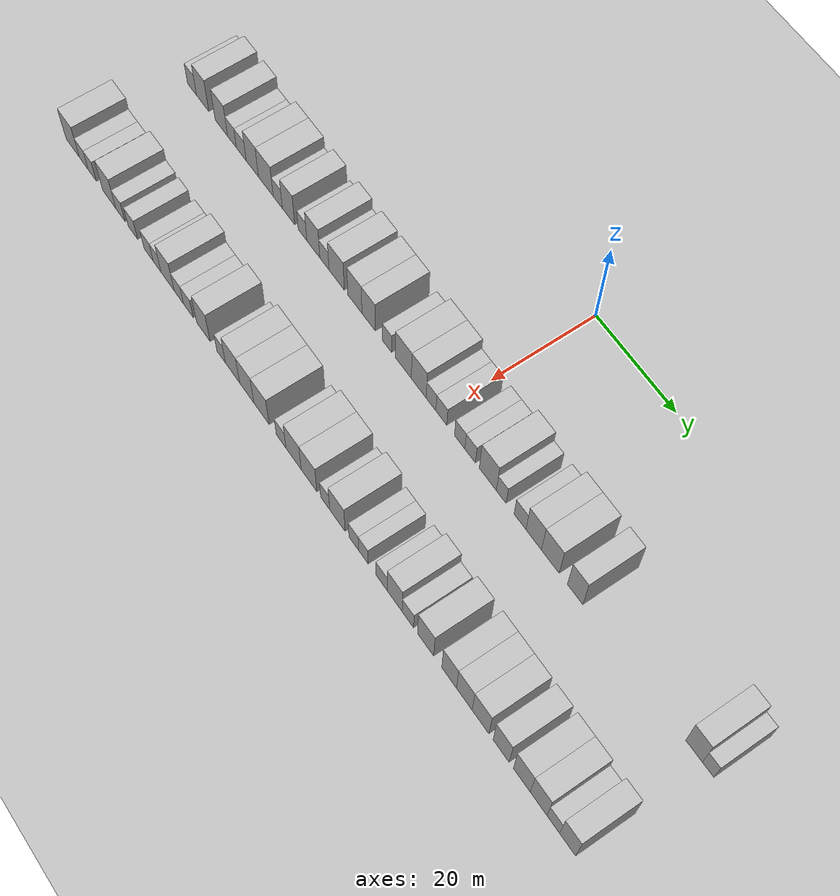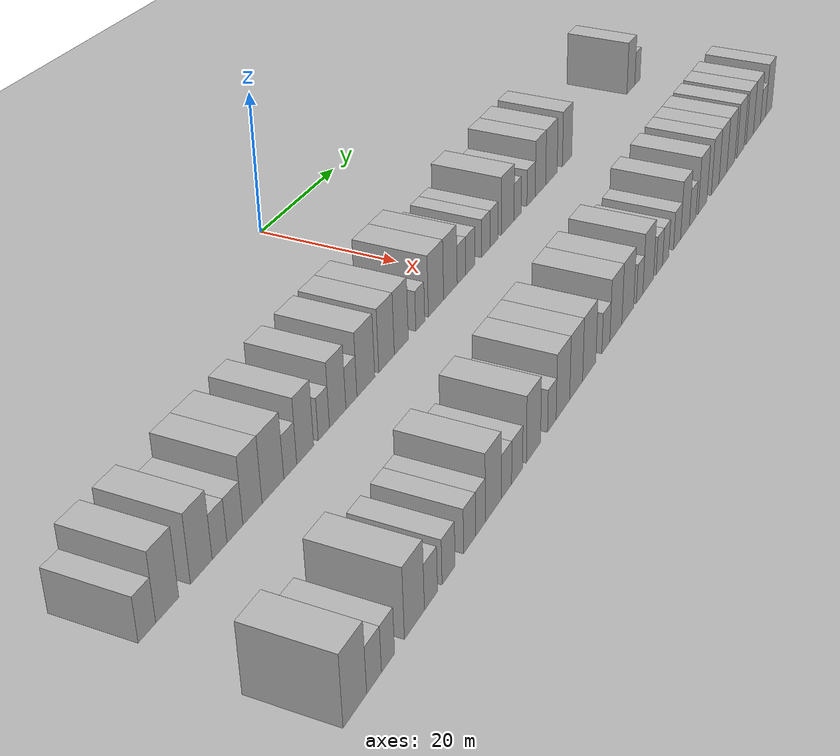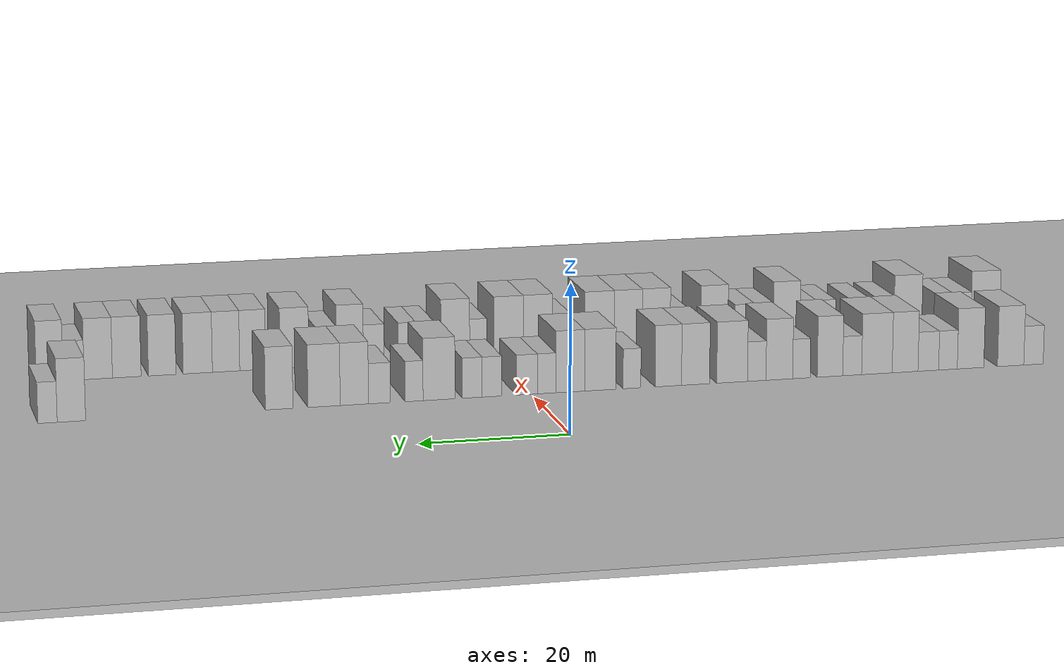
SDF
<sdf version="1.6">
 <world name="default">
  <include><name>ground_plane_1</name><uri>model://HANNAS_ground_plane</uri></include>
  <include>
   <name>ground_plane_2</name>
   <uri>model://HANNAS_ground_plane</uri>
   <pose>100 0 0  0 0 0</pose>
  </include>
  <model name="building_34">
   <static>1</static>
   <pose>25.0000 -70.9645 0 0.000000 0.000000 0.000000</pose>
   <link name="link">
    <pose>0 0 3.00 0 0 0</pose>
    <collision name="collision"><geometry><box><size>10.0000 2.8503 6.0000</size></box></geometry></collision>
    <visual name="visual">
     <cast_shadows>0</cast_shadows>
     <geometry><box><size>10.0000 2.8503 6.0000</size></box></geometry>
     <material>
      <script>
       <uri>model://HANNAS_wall/materials/scripts</uri>
       <uri>model://HANNAS_wall/materials/textures</uri>
       <name>vrc/HANNAS_wall</name>
      </script>
     </material>
    </visual>
   </link>
  </model>
  <model name="building_35">
   <static>1</static>
   <pose>25.0000 -67.6166 0 0.000000 0.000000 0.000000</pose>
   <link name="link">
    <pose>0 0 4.50 0 0 0</pose>
    <collision name="collision"><geometry><box><size>10.0000 3.8455 9.0000</size></box></geometry></collision>
    <visual name="visual">
     <cast_shadows>0</cast_shadows>
     <geometry><box><size>10.0000 3.8455 9.0000</size></box></geometry>
     <material>
      <script>
       <uri>model://HANNAS_wall/materials/scripts</uri>
       <uri>model://HANNAS_wall/materials/textures</uri>
       <name>vrc/HANNAS_wall</name>
      </script>
     </material>
    </visual>
   </link>
  </model>
  <model name="building_36">
   <static>1</static>
   <pose>25.0000 -61.7630 0 0.000000 0.000000 0.000000</pose>
   <link name="link">
    <pose>0 0 4.50 0 0 0</pose>
    <collision name="collision"><geometry><box><size>10.0000 3.8618 9.0000</size></box></geometry></collision>
    <visual name="visual">
     <cast_shadows>0</cast_shadows>
     <geometry><box><size>10.0000 3.8618 9.0000</size></box></geometry>
     <material>
      <script>
       <uri>model://HANNAS_wall/materials/scripts</uri>
       <uri>model://HANNAS_wall/materials/textures</uri>
       <name>vrc/HANNAS_wall</name>
      </script>
     </material>
    </visual>
   </link>
  </model>
  <model name="building_37">
   <static>1</static>
   <pose>25.0000 -58.4791 0 0.000000 0.000000 0.000000</pose>
   <link name="link">
    <pose>0 0 3.00 0 0 0</pose>
    <collision name="collision"><geometry><box><size>10.0000 2.7060 6.0000</size></box></geometry></collision>
    <visual name="visual">
     <cast_shadows>0</cast_shadows>
     <geometry><box><size>10.0000 2.7060 6.0000</size></box></geometry>
     <material>
      <script>
       <uri>model://HANNAS_wall/materials/scripts</uri>
       <uri>model://HANNAS_wall/materials/textures</uri>
       <name>vrc/HANNAS_wall</name>
      </script>
     </material>
    </visual>
   </link>
  </model>
  <model name="building_38">
   <static>1</static>
   <pose>25.0000 -55.6310 0 0.000000 0.000000 0.000000</pose>
   <link name="link">
    <pose>0 0 3.00 0 0 0</pose>
    <collision name="collision"><geometry><box><size>10.0000 2.9903 6.0000</size></box></geometry></collision>
    <visual name="visual">
     <cast_shadows>0</cast_shadows>
     <geometry><box><size>10.0000 2.9903 6.0000</size></box></geometry>
     <material>
      <script>
       <uri>model://HANNAS_wall/materials/scripts</uri>
       <uri>model://HANNAS_wall/materials/textures</uri>
       <name>vrc/HANNAS_wall</name>
      </script>
     </material>
    </visual>
   </link>
  </model>
  <model name="building_39">
   <static>1</static>
   <pose>25.0000 -52.2686 0 0.000000 0.000000 0.000000</pose>
   <link name="link">
    <pose>0 0 4.50 0 0 0</pose>
    <collision name="collision"><geometry><box><size>10.0000 3.7345 9.0000</size></box></geometry></collision>
    <visual name="visual">
     <cast_shadows>0</cast_shadows>
     <geometry><box><size>10.0000 3.7345 9.0000</size></box></geometry>
     <material>
      <script>
       <uri>model://HANNAS_wall/materials/scripts</uri>
       <uri>model://HANNAS_wall/materials/textures</uri>
       <name>vrc/HANNAS_wall</name>
      </script>
     </material>
    </visual>
   </link>
  </model>
  <model name="building_40">
   <static>1</static>
   <pose>25.0000 -48.2032 0 0.000000 0.000000 0.000000</pose>
   <link name="link">
    <pose>0 0 4.50 0 0 0</pose>
    <collision name="collision"><geometry><box><size>10.0000 4.3964 9.0000</size></box></geometry></collision>
    <visual name="visual">
     <cast_shadows>0</cast_shadows>
     <geometry><box><size>10.0000 4.3964 9.0000</size></box></geometry>
     <material>
      <script>
       <uri>model://HANNAS_wall/materials/scripts</uri>
       <uri>model://HANNAS_wall/materials/textures</uri>
       <name>vrc/HANNAS_wall</name>
      </script>
     </material>
    </visual>
   </link>
  </model>
  <model name="building_41">
   <static>1</static>
   <pose>25.0000 -44.6476 0 0.000000 0.000000 0.000000</pose>
   <link name="link">
    <pose>0 0 3.00 0 0 0</pose>
    <collision name="collision"><geometry><box><size>10.0000 2.7148 6.0000</size></box></geometry></collision>
    <visual name="visual">
     <cast_shadows>0</cast_shadows>
     <geometry><box><size>10.0000 2.7148 6.0000</size></box></geometry>
     <material>
      <script>
       <uri>model://HANNAS_wall/materials/scripts</uri>
       <uri>model://HANNAS_wall/materials/textures</uri>
       <name>vrc/HANNAS_wall</name>
      </script>
     </material>
    </visual>
   </link>
  </model>
  <model name="building_42">
   <static>1</static>
   <pose>25.0000 -41.4667 0 0.000000 0.000000 0.000000</pose>
   <link name="link">
    <pose>0 0 4.50 0 0 0</pose>
    <collision name="collision"><geometry><box><size>10.0000 3.6469 9.0000</size></box></geometry></collision>
    <visual name="visual">
     <cast_shadows>0</cast_shadows>
     <geometry><box><size>10.0000 3.6469 9.0000</size></box></geometry>
     <material>
      <script>
       <uri>model://HANNAS_wall/materials/scripts</uri>
       <uri>model://HANNAS_wall/materials/textures</uri>
       <name>vrc/HANNAS_wall</name>
      </script>
     </material>
    </visual>
   </link>
  </model>
  <model name="building_43">
   <static>1</static>
   <pose>25.0000 -37.3886 0 0.000000 0.000000 0.000000</pose>
   <link name="link">
    <pose>0 0 3.00 0 0 0</pose>
    <collision name="collision"><geometry><box><size>10.0000 2.5093 6.0000</size></box></geometry></collision>
    <visual name="visual">
     <cast_shadows>0</cast_shadows>
     <geometry><box><size>10.0000 2.5093 6.0000</size></box></geometry>
     <material>
      <script>
       <uri>model://HANNAS_wall/materials/scripts</uri>
       <uri>model://HANNAS_wall/materials/textures</uri>
       <name>vrc/HANNAS_wall</name>
      </script>
     </material>
    </visual>
   </link>
  </model>
  <model name="building_44">
   <static>1</static>
   <pose>25.0000 -34.2427 0 0.000000 0.000000 0.000000</pose>
   <link name="link">
    <pose>0 0 4.50 0 0 0</pose>
    <collision name="collision"><geometry><box><size>10.0000 3.7825 9.0000</size></box></geometry></collision>
    <visual name="visual">
     <cast_shadows>0</cast_shadows>
     <geometry><box><size>10.0000 3.7825 9.0000</size></box></geometry>
     <material>
      <script>
       <uri>model://HANNAS_wall/materials/scripts</uri>
       <uri>model://HANNAS_wall/materials/textures</uri>
       <name>vrc/HANNAS_wall</name>
      </script>
     </material>
    </visual>
   </link>
  </model>
  <model name="building_45">
   <static>1</static>
   <pose>25.0000 -31.0395 0 0.000000 0.000000 0.000000</pose>
   <link name="link">
    <pose>0 0 3.00 0 0 0</pose>
    <collision name="collision"><geometry><box><size>10.0000 2.6238 6.0000</size></box></geometry></collision>
    <visual name="visual">
     <cast_shadows>0</cast_shadows>
     <geometry><box><size>10.0000 2.6238 6.0000</size></box></geometry>
     <material>
      <script>
       <uri>model://HANNAS_wall/materials/scripts</uri>
       <uri>model://HANNAS_wall/materials/textures</uri>
       <name>vrc/HANNAS_wall</name>
      </script>
     </material>
    </visual>
   </link>
  </model>
  <model name="building_46">
   <static>1</static>
   <pose>25.0000 -27.5578 0 0.000000 0.000000 0.000000</pose>
   <link name="link">
    <pose>0 0 4.50 0 0 0</pose>
    <collision name="collision"><geometry><box><size>10.0000 4.3396 9.0000</size></box></geometry></collision>
    <visual name="visual">
     <cast_shadows>0</cast_shadows>
     <geometry><box><size>10.0000 4.3396 9.0000</size></box></geometry>
     <material>
      <script>
       <uri>model://HANNAS_wall/materials/scripts</uri>
       <uri>model://HANNAS_wall/materials/textures</uri>
       <name>vrc/HANNAS_wall</name>
      </script>
     </material>
    </visual>
   </link>
  </model>
  <model name="building_47">
   <static>1</static>
   <pose>25.0000 -22.4125 0 0.000000 0.000000 0.000000</pose>
   <link name="link">
    <pose>0 0 4.50 0 0 0</pose>
    <collision name="collision"><geometry><box><size>10.0000 3.9510 9.0000</size></box></geometry></collision>
    <visual name="visual">
     <cast_shadows>0</cast_shadows>
     <geometry><box><size>10.0000 3.9510 9.0000</size></box></geometry>
     <material>
      <script>
       <uri>model://HANNAS_wall/materials/scripts</uri>
       <uri>model://HANNAS_wall/materials/textures</uri>
       <name>vrc/HANNAS_wall</name>
      </script>
     </material>
    </visual>
   </link>
  </model>
  <model name="building_48">
   <static>1</static>
   <pose>25.0000 -18.5852 0 0.000000 0.000000 0.000000</pose>
   <link name="link">
    <pose>0 0 4.50 0 0 0</pose>
    <collision name="collision"><geometry><box><size>10.0000 3.7035 9.0000</size></box></geometry></collision>
    <visual name="visual">
     <cast_shadows>0</cast_shadows>
     <geometry><box><size>10.0000 3.7035 9.0000</size></box></geometry>
     <material>
      <script>
       <uri>model://HANNAS_wall/materials/scripts</uri>
       <uri>model://HANNAS_wall/materials/textures</uri>
       <name>vrc/HANNAS_wall</name>
      </script>
     </material>
    </visual>
   </link>
  </model>
  <model name="building_49">
   <static>1</static>
   <pose>25.0000 -13.5009 0 0.000000 0.000000 0.000000</pose>
   <link name="link">
    <pose>0 0 3.00 0 0 0</pose>
    <collision name="collision"><geometry><box><size>10.0000 2.4650 6.0000</size></box></geometry></collision>
    <visual name="visual">
     <cast_shadows>0</cast_shadows>
     <geometry><box><size>10.0000 2.4650 6.0000</size></box></geometry>
     <material>
      <script>
       <uri>model://HANNAS_wall/materials/scripts</uri>
       <uri>model://HANNAS_wall/materials/textures</uri>
       <name>vrc/HANNAS_wall</name>
      </script>
     </material>
    </visual>
   </link>
  </model>
  <model name="building_50">
   <static>1</static>
   <pose>25.0000 -9.0955 0 0.000000 0.000000 0.000000</pose>
   <link name="link">
    <pose>0 0 4.50 0 0 0</pose>
    <collision name="collision"><geometry><box><size>10.0000 4.3460 9.0000</size></box></geometry></collision>
    <visual name="visual">
     <cast_shadows>0</cast_shadows>
     <geometry><box><size>10.0000 4.3460 9.0000</size></box></geometry>
     <material>
      <script>
       <uri>model://HANNAS_wall/materials/scripts</uri>
       <uri>model://HANNAS_wall/materials/textures</uri>
       <name>vrc/HANNAS_wall</name>
      </script>
     </material>
    </visual>
   </link>
  </model>
  <model name="building_51">
   <static>1</static>
   <pose>25.0000 -4.9324 0 0.000000 0.000000 0.000000</pose>
   <link name="link">
    <pose>0 0 4.50 0 0 0</pose>
    <collision name="collision"><geometry><box><size>10.0000 3.9801 9.0000</size></box></geometry></collision>
    <visual name="visual">
     <cast_shadows>0</cast_shadows>
     <geometry><box><size>10.0000 3.9801 9.0000</size></box></geometry>
     <material>
      <script>
       <uri>model://HANNAS_wall/materials/scripts</uri>
       <uri>model://HANNAS_wall/materials/textures</uri>
       <name>vrc/HANNAS_wall</name>
      </script>
     </material>
    </visual>
   </link>
  </model>
  <model name="building_52">
   <static>1</static>
   <pose>25.0000 -1.6606 0 0.000000 0.000000 0.000000</pose>
   <link name="link">
    <pose>0 0 3.00 0 0 0</pose>
    <collision name="collision"><geometry><box><size>10.0000 2.5635 6.0000</size></box></geometry></collision>
    <visual name="visual">
     <cast_shadows>0</cast_shadows>
     <geometry><box><size>10.0000 2.5635 6.0000</size></box></geometry>
     <material>
      <script>
       <uri>model://HANNAS_wall/materials/scripts</uri>
       <uri>model://HANNAS_wall/materials/textures</uri>
       <name>vrc/HANNAS_wall</name>
      </script>
     </material>
    </visual>
   </link>
  </model>
  <model name="building_53">
   <static>1</static>
   <pose>25.0000 1.0606 0 0.000000 0.000000 0.000000</pose>
   <link name="link">
    <pose>0 0 3.00 0 0 0</pose>
    <collision name="collision"><geometry><box><size>10.0000 2.8790 6.0000</size></box></geometry></collision>
    <visual name="visual">
     <cast_shadows>0</cast_shadows>
     <geometry><box><size>10.0000 2.8790 6.0000</size></box></geometry>
     <material>
      <script>
       <uri>model://HANNAS_wall/materials/scripts</uri>
       <uri>model://HANNAS_wall/materials/textures</uri>
       <name>vrc/HANNAS_wall</name>
      </script>
     </material>
    </visual>
   </link>
  </model>
  <model name="building_54">
   <static>1</static>
   <pose>25.0000 5.8469 0 0.000000 0.000000 0.000000</pose>
   <link name="link">
    <pose>0 0 3.00 0 0 0</pose>
    <collision name="collision"><geometry><box><size>10.0000 2.6937 6.0000</size></box></geometry></collision>
    <visual name="visual">
     <cast_shadows>0</cast_shadows>
     <geometry><box><size>10.0000 2.6937 6.0000</size></box></geometry>
     <material>
      <script>
       <uri>model://HANNAS_wall/materials/scripts</uri>
       <uri>model://HANNAS_wall/materials/textures</uri>
       <name>vrc/HANNAS_wall</name>
      </script>
     </material>
    </visual>
   </link>
  </model>
  <model name="building_55">
   <static>1</static>
   <pose>25.0000 8.5517 0 0.000000 0.000000 0.000000</pose>
   <link name="link">
    <pose>0 0 3.00 0 0 0</pose>
    <collision name="collision"><geometry><box><size>10.0000 2.7158 6.0000</size></box></geometry></collision>
    <visual name="visual">
     <cast_shadows>0</cast_shadows>
     <geometry><box><size>10.0000 2.7158 6.0000</size></box></geometry>
     <material>
      <script>
       <uri>model://HANNAS_wall/materials/scripts</uri>
       <uri>model://HANNAS_wall/materials/textures</uri>
       <name>vrc/HANNAS_wall</name>
      </script>
     </material>
    </visual>
   </link>
  </model>
  <model name="building_56">
   <static>1</static>
   <pose>25.0000 13.0838 0 0.000000 0.000000 0.000000</pose>
   <link name="link">
    <pose>0 0 4.50 0 0 0</pose>
    <collision name="collision"><geometry><box><size>10.0000 4.3484 9.0000</size></box></geometry></collision>
    <visual name="visual">
     <cast_shadows>0</cast_shadows>
     <geometry><box><size>10.0000 4.3484 9.0000</size></box></geometry>
     <material>
      <script>
       <uri>model://HANNAS_wall/materials/scripts</uri>
       <uri>model://HANNAS_wall/materials/textures</uri>
       <name>vrc/HANNAS_wall</name>
      </script>
     </material>
    </visual>
   </link>
  </model>
  <model name="building_57">
   <static>1</static>
   <pose>25.0000 16.4776 0 0.000000 0.000000 0.000000</pose>
   <link name="link">
    <pose>0 0 3.00 0 0 0</pose>
    <collision name="collision"><geometry><box><size>10.0000 2.4392 6.0000</size></box></geometry></collision>
    <visual name="visual">
     <cast_shadows>0</cast_shadows>
     <geometry><box><size>10.0000 2.4392 6.0000</size></box></geometry>
     <material>
      <script>
       <uri>model://HANNAS_wall/materials/scripts</uri>
       <uri>model://HANNAS_wall/materials/textures</uri>
       <name>vrc/HANNAS_wall</name>
      </script>
     </material>
    </visual>
   </link>
  </model>
  <model name="building_58">
   <static>1</static>
   <pose>25.0000 21.1760 0 0.000000 0.000000 0.000000</pose>
   <link name="link">
    <pose>0 0 3.00 0 0 0</pose>
    <collision name="collision"><geometry><box><size>10.0000 2.9576 6.0000</size></box></geometry></collision>
    <visual name="visual">
     <cast_shadows>0</cast_shadows>
     <geometry><box><size>10.0000 2.9576 6.0000</size></box></geometry>
     <material>
      <script>
       <uri>model://HANNAS_wall/materials/scripts</uri>
       <uri>model://HANNAS_wall/materials/textures</uri>
       <name>vrc/HANNAS_wall</name>
      </script>
     </material>
    </visual>
   </link>
  </model>
  <model name="building_59">
   <static>1</static>
   <pose>25.0000 24.5634 0 0.000000 0.000000 0.000000</pose>
   <link name="link">
    <pose>0 0 4.50 0 0 0</pose>
    <collision name="collision"><geometry><box><size>10.0000 3.8172 9.0000</size></box></geometry></collision>
    <visual name="visual">
     <cast_shadows>0</cast_shadows>
     <geometry><box><size>10.0000 3.8172 9.0000</size></box></geometry>
     <material>
      <script>
       <uri>model://HANNAS_wall/materials/scripts</uri>
       <uri>model://HANNAS_wall/materials/textures</uri>
       <name>vrc/HANNAS_wall</name>
      </script>
     </material>
    </visual>
   </link>
  </model>
  <model name="building_60">
   <static>1</static>
   <pose>25.0000 28.6364 0 0.000000 0.000000 0.000000</pose>
   <link name="link">
    <pose>0 0 4.50 0 0 0</pose>
    <collision name="collision"><geometry><box><size>10.0000 4.3287 9.0000</size></box></geometry></collision>
    <visual name="visual">
     <cast_shadows>0</cast_shadows>
     <geometry><box><size>10.0000 4.3287 9.0000</size></box></geometry>
     <material>
      <script>
       <uri>model://HANNAS_wall/materials/scripts</uri>
       <uri>model://HANNAS_wall/materials/textures</uri>
       <name>vrc/HANNAS_wall</name>
      </script>
     </material>
    </visual>
   </link>
  </model>
  <model name="building_61">
   <static>1</static>
   <pose>25.0000 34.6483 0 0.000000 0.000000 0.000000</pose>
   <link name="link">
    <pose>0 0 4.50 0 0 0</pose>
    <collision name="collision"><geometry><box><size>10.0000 3.6950 9.0000</size></box></geometry></collision>
    <visual name="visual">
     <cast_shadows>0</cast_shadows>
     <geometry><box><size>10.0000 3.6950 9.0000</size></box></geometry>
     <material>
      <script>
       <uri>model://HANNAS_wall/materials/scripts</uri>
       <uri>model://HANNAS_wall/materials/textures</uri>
       <name>vrc/HANNAS_wall</name>
      </script>
     </material>
    </visual>
   </link>
  </model>
  <model name="building_62">
   <static>1</static>
   <pose>25.0000 62.0389 0 0.000000 0.000000 0.000000</pose>
   <link name="link">
    <pose>0 0 4.50 0 0 0</pose>
    <collision name="collision"><geometry><box><size>10.0000 3.6954 9.0000</size></box></geometry></collision>
    <visual name="visual">
     <cast_shadows>0</cast_shadows>
     <geometry><box><size>10.0000 3.6954 9.0000</size></box></geometry>
     <material>
      <script>
       <uri>model://HANNAS_wall/materials/scripts</uri>
       <uri>model://HANNAS_wall/materials/textures</uri>
       <name>vrc/HANNAS_wall</name>
      </script>
     </material>
    </visual>
   </link>
  </model>
  <model name="building_63">
   <static>1</static>
   <pose>25.0000 65.1429 0 0.000000 0.000000 0.000000</pose>
   <link name="link">
    <pose>0 0 3.00 0 0 0</pose>
    <collision name="collision"><geometry><box><size>10.0000 2.5127 6.0000</size></box></geometry></collision>
    <visual name="visual">
     <cast_shadows>0</cast_shadows>
     <geometry><box><size>10.0000 2.5127 6.0000</size></box></geometry>
     <material>
      <script>
       <uri>model://HANNAS_wall/materials/scripts</uri>
       <uri>model://HANNAS_wall/materials/textures</uri>
       <name>vrc/HANNAS_wall</name>
      </script>
     </material>
    </visual>
   </link>
  </model>
  <model name="building_127">
   <static>1</static>
   <pose>47.0000 -71.9589 0 0.000000 0.000000 0.000000</pose>
   <link name="link">
    <pose>0 0 4.50 0 0 0</pose>
    <collision name="collision"><geometry><box><size>10.0000 4.3811 9.0000</size></box></geometry></collision>
    <visual name="visual">
     <cast_shadows>0</cast_shadows>
     <geometry><box><size>10.0000 4.3811 9.0000</size></box></geometry>
     <material>
      <script>
       <uri>model://HANNAS_wall/materials/scripts</uri>
       <uri>model://HANNAS_wall/materials/textures</uri>
       <name>vrc/HANNAS_wall</name>
      </script>
     </material>
    </visual>
   </link>
  </model>
  <model name="building_128">
   <static>1</static>
   <pose>47.0000 -68.3436 0 0.000000 0.000000 0.000000</pose>
   <link name="link">
    <pose>0 0 3.00 0 0 0</pose>
    <collision name="collision"><geometry><box><size>10.0000 2.8496 6.0000</size></box></geometry></collision>
    <visual name="visual">
     <cast_shadows>0</cast_shadows>
     <geometry><box><size>10.0000 2.8496 6.0000</size></box></geometry>
     <material>
      <script>
       <uri>model://HANNAS_wall/materials/scripts</uri>
       <uri>model://HANNAS_wall/materials/textures</uri>
       <name>vrc/HANNAS_wall</name>
      </script>
     </material>
    </visual>
   </link>
  </model>
  <model name="building_129">
   <static>1</static>
   <pose>47.0000 -65.6181 0 0.000000 0.000000 0.000000</pose>
   <link name="link">
    <pose>0 0 3.00 0 0 0</pose>
    <collision name="collision"><geometry><box><size>10.0000 2.6015 6.0000</size></box></geometry></collision>
    <visual name="visual">
     <cast_shadows>0</cast_shadows>
     <geometry><box><size>10.0000 2.6015 6.0000</size></box></geometry>
     <material>
      <script>
       <uri>model://HANNAS_wall/materials/scripts</uri>
       <uri>model://HANNAS_wall/materials/textures</uri>
       <name>vrc/HANNAS_wall</name>
      </script>
     </material>
    </visual>
   </link>
  </model>
  <model name="building_130">
   <static>1</static>
   <pose>47.0000 -60.2142 0 0.000000 0.000000 0.000000</pose>
   <link name="link">
    <pose>0 0 4.50 0 0 0</pose>
    <collision name="collision"><geometry><box><size>10.0000 4.2064 9.0000</size></box></geometry></collision>
    <visual name="visual">
     <cast_shadows>0</cast_shadows>
     <geometry><box><size>10.0000 4.2064 9.0000</size></box></geometry>
     <material>
      <script>
       <uri>model://HANNAS_wall/materials/scripts</uri>
       <uri>model://HANNAS_wall/materials/textures</uri>
       <name>vrc/HANNAS_wall</name>
      </script>
     </material>
    </visual>
   </link>
  </model>
  <model name="building_131">
   <static>1</static>
   <pose>47.0000 -56.6797 0 0.000000 0.000000 0.000000</pose>
   <link name="link">
    <pose>0 0 3.00 0 0 0</pose>
    <collision name="collision"><geometry><box><size>10.0000 2.8626 6.0000</size></box></geometry></collision>
    <visual name="visual">
     <cast_shadows>0</cast_shadows>
     <geometry><box><size>10.0000 2.8626 6.0000</size></box></geometry>
     <material>
      <script>
       <uri>model://HANNAS_wall/materials/scripts</uri>
       <uri>model://HANNAS_wall/materials/textures</uri>
       <name>vrc/HANNAS_wall</name>
      </script>
     </material>
    </visual>
   </link>
  </model>
  <model name="building_132">
   <static>1</static>
   <pose>47.0000 -52.7775 0 0.000000 0.000000 0.000000</pose>
   <link name="link">
    <pose>0 0 3.00 0 0 0</pose>
    <collision name="collision"><geometry><box><size>10.0000 2.9418 6.0000</size></box></geometry></collision>
    <visual name="visual">
     <cast_shadows>0</cast_shadows>
     <geometry><box><size>10.0000 2.9418 6.0000</size></box></geometry>
     <material>
      <script>
       <uri>model://HANNAS_wall/materials/scripts</uri>
       <uri>model://HANNAS_wall/materials/textures</uri>
       <name>vrc/HANNAS_wall</name>
      </script>
     </material>
    </visual>
   </link>
  </model>
  <model name="building_133">
   <static>1</static>
   <pose>47.0000 -47.8874 0 0.000000 0.000000 0.000000</pose>
   <link name="link">
    <pose>0 0 3.00 0 0 0</pose>
    <collision name="collision"><geometry><box><size>10.0000 2.8385 6.0000</size></box></geometry></collision>
    <visual name="visual">
     <cast_shadows>0</cast_shadows>
     <geometry><box><size>10.0000 2.8385 6.0000</size></box></geometry>
     <material>
      <script>
       <uri>model://HANNAS_wall/materials/scripts</uri>
       <uri>model://HANNAS_wall/materials/textures</uri>
       <name>vrc/HANNAS_wall</name>
      </script>
     </material>
    </visual>
   </link>
  </model>
  <model name="building_134">
   <static>1</static>
   <pose>47.0000 -45.2676 0 0.000000 0.000000 0.000000</pose>
   <link name="link">
    <pose>0 0 3.00 0 0 0</pose>
    <collision name="collision"><geometry><box><size>10.0000 2.4011 6.0000</size></box></geometry></collision>
    <visual name="visual">
     <cast_shadows>0</cast_shadows>
     <geometry><box><size>10.0000 2.4011 6.0000</size></box></geometry>
     <material>
      <script>
       <uri>model://HANNAS_wall/materials/scripts</uri>
       <uri>model://HANNAS_wall/materials/textures</uri>
       <name>vrc/HANNAS_wall</name>
      </script>
     </material>
    </visual>
   </link>
  </model>
  <model name="building_135">
   <static>1</static>
   <pose>47.0000 -42.0688 0 0.000000 0.000000 0.000000</pose>
   <link name="link">
    <pose>0 0 4.50 0 0 0</pose>
    <collision name="collision"><geometry><box><size>10.0000 3.9963 9.0000</size></box></geometry></collision>
    <visual name="visual">
     <cast_shadows>0</cast_shadows>
     <geometry><box><size>10.0000 3.9963 9.0000</size></box></geometry>
     <material>
      <script>
       <uri>model://HANNAS_wall/materials/scripts</uri>
       <uri>model://HANNAS_wall/materials/textures</uri>
       <name>vrc/HANNAS_wall</name>
      </script>
     </material>
    </visual>
   </link>
  </model>
  <model name="building_136">
   <static>1</static>
   <pose>47.0000 -38.7112 0 0.000000 0.000000 0.000000</pose>
   <link name="link">
    <pose>0 0 3.00 0 0 0</pose>
    <collision name="collision"><geometry><box><size>10.0000 2.7189 6.0000</size></box></geometry></collision>
    <visual name="visual">
     <cast_shadows>0</cast_shadows>
     <geometry><box><size>10.0000 2.7189 6.0000</size></box></geometry>
     <material>
      <script>
       <uri>model://HANNAS_wall/materials/scripts</uri>
       <uri>model://HANNAS_wall/materials/textures</uri>
       <name>vrc/HANNAS_wall</name>
      </script>
     </material>
    </visual>
   </link>
  </model>
  <model name="building_137">
   <static>1</static>
   <pose>47.0000 -35.8767 0 0.000000 0.000000 0.000000</pose>
   <link name="link">
    <pose>0 0 3.00 0 0 0</pose>
    <collision name="collision"><geometry><box><size>10.0000 2.9502 6.0000</size></box></geometry></collision>
    <visual name="visual">
     <cast_shadows>0</cast_shadows>
     <geometry><box><size>10.0000 2.9502 6.0000</size></box></geometry>
     <material>
      <script>
       <uri>model://HANNAS_wall/materials/scripts</uri>
       <uri>model://HANNAS_wall/materials/textures</uri>
       <name>vrc/HANNAS_wall</name>
      </script>
     </material>
    </visual>
   </link>
  </model>
  <model name="building_138">
   <static>1</static>
   <pose>47.0000 -31.4152 0 0.000000 0.000000 0.000000</pose>
   <link name="link">
    <pose>0 0 4.50 0 0 0</pose>
    <collision name="collision"><geometry><box><size>10.0000 3.9727 9.0000</size></box></geometry></collision>
    <visual name="visual">
     <cast_shadows>0</cast_shadows>
     <geometry><box><size>10.0000 3.9727 9.0000</size></box></geometry>
     <material>
      <script>
       <uri>model://HANNAS_wall/materials/scripts</uri>
       <uri>model://HANNAS_wall/materials/textures</uri>
       <name>vrc/HANNAS_wall</name>
      </script>
     </material>
    </visual>
   </link>
  </model>
  <model name="building_139">
   <static>1</static>
   <pose>47.0000 -26.1804 0 0.000000 0.000000 0.000000</pose>
   <link name="link">
    <pose>0 0 3.00 0 0 0</pose>
    <collision name="collision"><geometry><box><size>10.0000 2.4970 6.0000</size></box></geometry></collision>
    <visual name="visual">
     <cast_shadows>0</cast_shadows>
     <geometry><box><size>10.0000 2.4970 6.0000</size></box></geometry>
     <material>
      <script>
       <uri>model://HANNAS_wall/materials/scripts</uri>
       <uri>model://HANNAS_wall/materials/textures</uri>
       <name>vrc/HANNAS_wall</name>
      </script>
     </material>
    </visual>
   </link>
  </model>
  <model name="building_140">
   <static>1</static>
   <pose>47.0000 -22.8952 0 0.000000 0.000000 0.000000</pose>
   <link name="link">
    <pose>0 0 4.50 0 0 0</pose>
    <collision name="collision"><geometry><box><size>10.0000 4.0733 9.0000</size></box></geometry></collision>
    <visual name="visual">
     <cast_shadows>0</cast_shadows>
     <geometry><box><size>10.0000 4.0733 9.0000</size></box></geometry>
     <material>
      <script>
       <uri>model://HANNAS_wall/materials/scripts</uri>
       <uri>model://HANNAS_wall/materials/textures</uri>
       <name>vrc/HANNAS_wall</name>
      </script>
     </material>
    </visual>
   </link>
  </model>
  <model name="building_141">
   <static>1</static>
   <pose>47.0000 -18.8339 0 0.000000 0.000000 0.000000</pose>
   <link name="link">
    <pose>0 0 4.50 0 0 0</pose>
    <collision name="collision"><geometry><box><size>10.0000 4.0493 9.0000</size></box></geometry></collision>
    <visual name="visual">
     <cast_shadows>0</cast_shadows>
     <geometry><box><size>10.0000 4.0493 9.0000</size></box></geometry>
     <material>
      <script>
       <uri>model://HANNAS_wall/materials/scripts</uri>
       <uri>model://HANNAS_wall/materials/textures</uri>
       <name>vrc/HANNAS_wall</name>
      </script>
     </material>
    </visual>
   </link>
  </model>
  <model name="building_142">
   <static>1</static>
   <pose>47.0000 -14.6690 0 0.000000 0.000000 0.000000</pose>
   <link name="link">
    <pose>0 0 4.50 0 0 0</pose>
    <collision name="collision"><geometry><box><size>10.0000 4.2805 9.0000</size></box></geometry></collision>
    <visual name="visual">
     <cast_shadows>0</cast_shadows>
     <geometry><box><size>10.0000 4.2805 9.0000</size></box></geometry>
     <material>
      <script>
       <uri>model://HANNAS_wall/materials/scripts</uri>
       <uri>model://HANNAS_wall/materials/textures</uri>
       <name>vrc/HANNAS_wall</name>
      </script>
     </material>
    </visual>
   </link>
  </model>
  <model name="building_143">
   <static>1</static>
   <pose>47.0000 -9.1778 0 0.000000 0.000000 0.000000</pose>
   <link name="link">
    <pose>0 0 3.00 0 0 0</pose>
    <collision name="collision"><geometry><box><size>10.0000 2.7019 6.0000</size></box></geometry></collision>
    <visual name="visual">
     <cast_shadows>0</cast_shadows>
     <geometry><box><size>10.0000 2.7019 6.0000</size></box></geometry>
     <material>
      <script>
       <uri>model://HANNAS_wall/materials/scripts</uri>
       <uri>model://HANNAS_wall/materials/textures</uri>
       <name>vrc/HANNAS_wall</name>
      </script>
     </material>
    </visual>
   </link>
  </model>
  <model name="building_144">
   <static>1</static>
   <pose>47.0000 -5.7334 0 0.000000 0.000000 0.000000</pose>
   <link name="link">
    <pose>0 0 4.50 0 0 0</pose>
    <collision name="collision"><geometry><box><size>10.0000 4.1870 9.0000</size></box></geometry></collision>
    <visual name="visual">
     <cast_shadows>0</cast_shadows>
     <geometry><box><size>10.0000 4.1870 9.0000</size></box></geometry>
     <material>
      <script>
       <uri>model://HANNAS_wall/materials/scripts</uri>
       <uri>model://HANNAS_wall/materials/textures</uri>
       <name>vrc/HANNAS_wall</name>
      </script>
     </material>
    </visual>
   </link>
  </model>
  <model name="building_145">
   <static>1</static>
   <pose>47.0000 -1.5194 0 0.000000 0.000000 0.000000</pose>
   <link name="link">
    <pose>0 0 4.50 0 0 0</pose>
    <collision name="collision"><geometry><box><size>10.0000 4.2410 9.0000</size></box></geometry></collision>
    <visual name="visual">
     <cast_shadows>0</cast_shadows>
     <geometry><box><size>10.0000 4.2410 9.0000</size></box></geometry>
     <material>
      <script>
       <uri>model://HANNAS_wall/materials/scripts</uri>
       <uri>model://HANNAS_wall/materials/textures</uri>
       <name>vrc/HANNAS_wall</name>
      </script>
     </material>
    </visual>
   </link>
  </model>
  <model name="building_146">
   <static>1</static>
   <pose>47.0000 2.8180 0 0.000000 0.000000 0.000000</pose>
   <link name="link">
    <pose>0 0 3.00 0 0 0</pose>
    <collision name="collision"><geometry><box><size>10.0000 2.4338 6.0000</size></box></geometry></collision>
    <visual name="visual">
     <cast_shadows>0</cast_shadows>
     <geometry><box><size>10.0000 2.4338 6.0000</size></box></geometry>
     <material>
      <script>
       <uri>model://HANNAS_wall/materials/scripts</uri>
       <uri>model://HANNAS_wall/materials/textures</uri>
       <name>vrc/HANNAS_wall</name>
      </script>
     </material>
    </visual>
   </link>
  </model>
  <model name="building_147">
   <static>1</static>
   <pose>47.0000 6.0800 0 0.000000 0.000000 0.000000</pose>
   <link name="link">
    <pose>0 0 4.50 0 0 0</pose>
    <collision name="collision"><geometry><box><size>10.0000 4.0900 9.0000</size></box></geometry></collision>
    <visual name="visual">
     <cast_shadows>0</cast_shadows>
     <geometry><box><size>10.0000 4.0900 9.0000</size></box></geometry>
     <material>
      <script>
       <uri>model://HANNAS_wall/materials/scripts</uri>
       <uri>model://HANNAS_wall/materials/textures</uri>
       <name>vrc/HANNAS_wall</name>
      </script>
     </material>
    </visual>
   </link>
  </model>
  <model name="building_148">
   <static>1</static>
   <pose>47.0000 10.3995 0 0.000000 0.000000 0.000000</pose>
   <link name="link">
    <pose>0 0 3.00 0 0 0</pose>
    <collision name="collision"><geometry><box><size>10.0000 2.5490 6.0000</size></box></geometry></collision>
    <visual name="visual">
     <cast_shadows>0</cast_shadows>
     <geometry><box><size>10.0000 2.5490 6.0000</size></box></geometry>
     <material>
      <script>
       <uri>model://HANNAS_wall/materials/scripts</uri>
       <uri>model://HANNAS_wall/materials/textures</uri>
       <name>vrc/HANNAS_wall</name>
      </script>
     </material>
    </visual>
   </link>
  </model>
  <model name="building_149">
   <static>1</static>
   <pose>47.0000 12.9273 0 0.000000 0.000000 0.000000</pose>
   <link name="link">
    <pose>0 0 3.00 0 0 0</pose>
    <collision name="collision"><geometry><box><size>10.0000 2.5065 6.0000</size></box></geometry></collision>
    <visual name="visual">
     <cast_shadows>0</cast_shadows>
     <geometry><box><size>10.0000 2.5065 6.0000</size></box></geometry>
     <material>
      <script>
       <uri>model://HANNAS_wall/materials/scripts</uri>
       <uri>model://HANNAS_wall/materials/textures</uri>
       <name>vrc/HANNAS_wall</name>
      </script>
     </material>
    </visual>
   </link>
  </model>
  <model name="building_150">
   <static>1</static>
   <pose>47.0000 17.6413 0 0.000000 0.000000 0.000000</pose>
   <link name="link">
    <pose>0 0 3.00 0 0 0</pose>
    <collision name="collision"><geometry><box><size>10.0000 2.9215 6.0000</size></box></geometry></collision>
    <visual name="visual">
     <cast_shadows>0</cast_shadows>
     <geometry><box><size>10.0000 2.9215 6.0000</size></box></geometry>
     <material>
      <script>
       <uri>model://HANNAS_wall/materials/scripts</uri>
       <uri>model://HANNAS_wall/materials/textures</uri>
       <name>vrc/HANNAS_wall</name>
      </script>
     </material>
    </visual>
   </link>
  </model>
  <model name="building_151">
   <static>1</static>
   <pose>47.0000 20.9936 0 0.000000 0.000000 0.000000</pose>
   <link name="link">
    <pose>0 0 4.50 0 0 0</pose>
    <collision name="collision"><geometry><box><size>10.0000 3.7832 9.0000</size></box></geometry></collision>
    <visual name="visual">
     <cast_shadows>0</cast_shadows>
     <geometry><box><size>10.0000 3.7832 9.0000</size></box></geometry>
     <material>
      <script>
       <uri>model://HANNAS_wall/materials/scripts</uri>
       <uri>model://HANNAS_wall/materials/textures</uri>
       <name>vrc/HANNAS_wall</name>
      </script>
     </material>
    </visual>
   </link>
  </model>
  <model name="building_152">
   <static>1</static>
   <pose>47.0000 24.3243 0 0.000000 0.000000 0.000000</pose>
   <link name="link">
    <pose>0 0 3.00 0 0 0</pose>
    <collision name="collision"><geometry><box><size>10.0000 2.8781 6.0000</size></box></geometry></collision>
    <visual name="visual">
     <cast_shadows>0</cast_shadows>
     <geometry><box><size>10.0000 2.8781 6.0000</size></box></geometry>
     <material>
      <script>
       <uri>model://HANNAS_wall/materials/scripts</uri>
       <uri>model://HANNAS_wall/materials/textures</uri>
       <name>vrc/HANNAS_wall</name>
      </script>
     </material>
    </visual>
   </link>
  </model>
  <model name="building_153">
   <static>1</static>
   <pose>47.0000 28.7708 0 0.000000 0.000000 0.000000</pose>
   <link name="link">
    <pose>0 0 4.50 0 0 0</pose>
    <collision name="collision"><geometry><box><size>10.0000 4.0150 9.0000</size></box></geometry></collision>
    <visual name="visual">
     <cast_shadows>0</cast_shadows>
     <geometry><box><size>10.0000 4.0150 9.0000</size></box></geometry>
     <material>
      <script>
       <uri>model://HANNAS_wall/materials/scripts</uri>
       <uri>model://HANNAS_wall/materials/textures</uri>
       <name>vrc/HANNAS_wall</name>
      </script>
     </material>
    </visual>
   </link>
  </model>
  <model name="building_154">
   <static>1</static>
   <pose>47.0000 34.5824 0 0.000000 0.000000 0.000000</pose>
   <link name="link">
    <pose>0 0 4.50 0 0 0</pose>
    <collision name="collision"><geometry><box><size>10.0000 3.6082 9.0000</size></box></geometry></collision>
    <visual name="visual">
     <cast_shadows>0</cast_shadows>
     <geometry><box><size>10.0000 3.6082 9.0000</size></box></geometry>
     <material>
      <script>
       <uri>model://HANNAS_wall/materials/scripts</uri>
       <uri>model://HANNAS_wall/materials/textures</uri>
       <name>vrc/HANNAS_wall</name>
      </script>
     </material>
    </visual>
   </link>
  </model>
  <model name="building_155">
   <static>1</static>
   <pose>47.0000 38.2816 0 0.000000 0.000000 0.000000</pose>
   <link name="link">
    <pose>0 0 4.50 0 0 0</pose>
    <collision name="collision"><geometry><box><size>10.0000 3.7902 9.0000</size></box></geometry></collision>
    <visual name="visual">
     <cast_shadows>0</cast_shadows>
     <geometry><box><size>10.0000 3.7902 9.0000</size></box></geometry>
     <material>
      <script>
       <uri>model://HANNAS_wall/materials/scripts</uri>
       <uri>model://HANNAS_wall/materials/textures</uri>
       <name>vrc/HANNAS_wall</name>
      </script>
     </material>
    </visual>
   </link>
  </model>
  <model name="building_156">
   <static>1</static>
   <pose>47.0000 42.1872 0 0.000000 0.000000 0.000000</pose>
   <link name="link">
    <pose>0 0 4.50 0 0 0</pose>
    <collision name="collision"><geometry><box><size>10.0000 4.0210 9.0000</size></box></geometry></collision>
    <visual name="visual">
     <cast_shadows>0</cast_shadows>
     <geometry><box><size>10.0000 4.0210 9.0000</size></box></geometry>
     <material>
      <script>
       <uri>model://HANNAS_wall/materials/scripts</uri>
       <uri>model://HANNAS_wall/materials/textures</uri>
       <name>vrc/HANNAS_wall</name>
      </script>
     </material>
    </visual>
   </link>
  </model>
  <model name="building_157">
   <static>1</static>
   <pose>47.0000 47.0934 0 0.000000 0.000000 0.000000</pose>
   <link name="link">
    <pose>0 0 4.50 0 0 0</pose>
    <collision name="collision"><geometry><box><size>10.0000 3.7912 9.0000</size></box></geometry></collision>
    <visual name="visual">
     <cast_shadows>0</cast_shadows>
     <geometry><box><size>10.0000 3.7912 9.0000</size></box></geometry>
     <material>
      <script>
       <uri>model://HANNAS_wall/materials/scripts</uri>
       <uri>model://HANNAS_wall/materials/textures</uri>
       <name>vrc/HANNAS_wall</name>
      </script>
     </material>
    </visual>
   </link>
  </model>
  <model name="building_158">
   <static>1</static>
   <pose>47.0000 51.9511 0 0.000000 0.000000 0.000000</pose>
   <link name="link">
    <pose>0 0 4.50 0 0 0</pose>
    <collision name="collision"><geometry><box><size>10.0000 3.9243 9.0000</size></box></geometry></collision>
    <visual name="visual">
     <cast_shadows>0</cast_shadows>
     <geometry><box><size>10.0000 3.9243 9.0000</size></box></geometry>
     <material>
      <script>
       <uri>model://HANNAS_wall/materials/scripts</uri>
       <uri>model://HANNAS_wall/materials/textures</uri>
       <name>vrc/HANNAS_wall</name>
      </script>
     </material>
    </visual>
   </link>
  </model>
  <model name="building_159">
   <static>1</static>
   <pose>47.0000 55.8421 0 0.000000 0.000000 0.000000</pose>
   <link name="link">
    <pose>0 0 4.50 0 0 0</pose>
    <collision name="collision"><geometry><box><size>10.0000 3.8577 9.0000</size></box></geometry></collision>
    <visual name="visual">
     <cast_shadows>0</cast_shadows>
     <geometry><box><size>10.0000 3.8577 9.0000</size></box></geometry>
     <material>
      <script>
       <uri>model://HANNAS_wall/materials/scripts</uri>
       <uri>model://HANNAS_wall/materials/textures</uri>
       <name>vrc/HANNAS_wall</name>
      </script>
     </material>
    </visual>
   </link>
  </model>
  <model name="building_160">
   <static>1</static>
   <pose>47.0000 59.2053 0 0.000000 0.000000 0.000000</pose>
   <link name="link">
    <pose>0 0 3.00 0 0 0</pose>
    <collision name="collision"><geometry><box><size>10.0000 2.8688 6.0000</size></box></geometry></collision>
    <visual name="visual">
     <cast_shadows>0</cast_shadows>
     <geometry><box><size>10.0000 2.8688 6.0000</size></box></geometry>
     <material>
      <script>
       <uri>model://HANNAS_wall/materials/scripts</uri>
       <uri>model://HANNAS_wall/materials/textures</uri>
       <name>vrc/HANNAS_wall</name>
      </script>
     </material>
    </visual>
   </link>
  </model>
  <model name="building_161">
   <static>1</static>
   <pose>47.0000 62.4525 0 0.000000 0.000000 0.000000</pose>
   <link name="link">
    <pose>0 0 4.50 0 0 0</pose>
    <collision name="collision"><geometry><box><size>10.0000 3.6256 9.0000</size></box></geometry></collision>
    <visual name="visual">
     <cast_shadows>0</cast_shadows>
     <geometry><box><size>10.0000 3.6256 9.0000</size></box></geometry>
     <material>
      <script>
       <uri>model://HANNAS_wall/materials/scripts</uri>
       <uri>model://HANNAS_wall/materials/textures</uri>
       <name>vrc/HANNAS_wall</name>
      </script>
     </material>
    </visual>
   </link>
  </model>
 </world>
</sdf>
